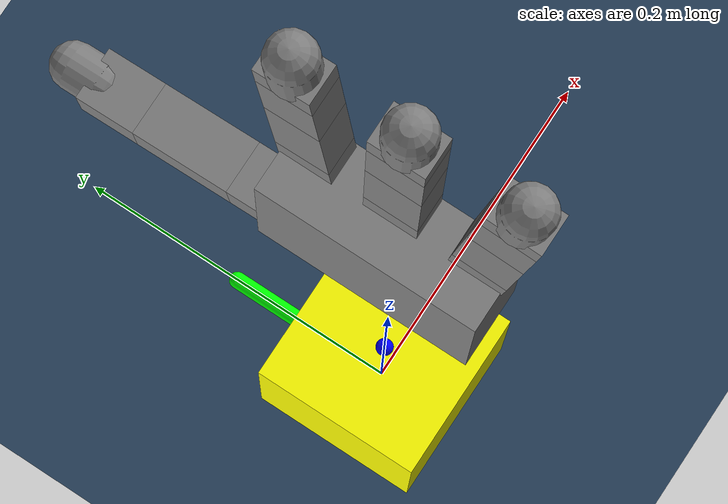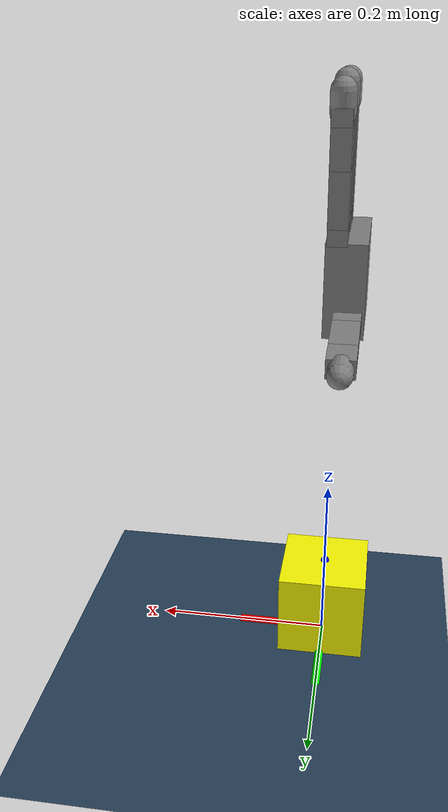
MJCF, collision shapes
<mujoco model="allegro_right_teleop">
  <compiler angle="radian" meshdir="assets" autolimits="true"/>

  <option solver="Newton" density="1.2" viscosity="0.1" />

  <!-- Defaults from right_hand.xml -->
  <default>
    <default class="allegro_right">
      <joint axis="0 1 0" damping=".1"/>
      <position kp="1"/>
      <geom density="800"/>

      <default class="visual">
        <geom type="mesh" contype="0" conaffinity="0" group="2" material="black"/>
        <default class="palm_visual">
          <geom mesh="base_link"/>
        </default>
        <default class="base_visual">
          <geom mesh="link_0.0"/>
        </default>
        <default class="proximal_visual">
          <geom mesh="link_1.0"/>
        </default>
        <default class="medial_visual">
          <geom mesh="link_2.0"/>
        </default>
        <default class="distal_visual">
          <geom mesh="link_3.0"/>
        </default>
        <default class="fingertip_visual">
          <geom pos="0 0 0.0267" material="white" mesh="link_3.0_tip"/>
        </default>
        <default class="thumbtip_visual">
          <geom pos="0 0 0.0423" material="white" mesh="link_15.0_tip"/>
        </default>
      </default>

      <default class="collision">
        <geom group="3" type="box" mass="0"/>
        <default class="palm_collision">
          <geom size="0.0204 0.0565 0.0475" pos="-0.0093 0 -0.0475"/>
        </default>
        <default class="base_collision">
          <geom size="0.0098 0.01375 0.0082" pos="0 0 0.0082"/>
          <default class="thumb_base_collision">
            <geom size="0.0179 0.017 0.02275" pos="-0.0179 0.009 0.0145"/>
          </default>
        </default>
        <default class="proximal_collision">
          <geom size="0.0098 0.01375 0.027" pos="0 0 0.027"/>
          <default class="thumb_proximal_collision">
            <geom size="0.0098 0.01375 0.00885" pos="0 0 0.00885"/>
          </default>
        </default>
        <default class="medial_collision">
          <geom size="0.0098 0.01375 0.0192" pos="0 0 0.0192"/>
          <default class="thumb_medial_collision">
            <geom size="0.0098 0.01375 0.0257" pos="0 0 0.0257"/>
          </default>
        </default>
        <default class="distal_collision">
          <geom size="0.0098 0.01375 0.008" pos="0 0 0.008"/>
          <default class="thumb_distal_collision">
            <geom size="0.0098 0.01375 0.0157" pos="0 0 0.0157"/>
          </default>
        </default>
        <default class="fingertip_collision">
          <geom type="capsule" size="0.012 0.01" pos="0 0 0.019"/>
          <default class="thumbtip_collision">
            <geom type="capsule" size="0.012 0.008" pos="0 0 0.035"/>
          </default>
        </default>
      </default>

      <default class="base">
        <joint axis="0 0 1" range="-0.47 0.47"/>
        <position ctrlrange="-0.47 0.47"/>
      </default>
      <default class="proximal">
        <joint range="-0.196 1.61"/>
        <position ctrlrange="-0.196 1.61"/>
      </default>
      <default class="medial">
        <joint range="-0.174 1.709"/>
        <position ctrlrange="-0.174 1.709"/>
      </default>
      <default class="distal">
        <joint range="-0.227 1.618"/>
        <position ctrlrange="-0.227 1.618"/>
      </default>
      <default class="thumb_base">
        <joint axis="-1 0 0" range="0.263 1.396"/>
        <position ctrlrange="0.263 1.396"/>
      </default>
      <default class="thumb_proximal">
        <joint axis="0 0 1" range="-0.105 1.163"/>
        <position ctrlrange="-0.105 1.163"/>
      </default>
      <default class="thumb_medial">
        <joint range="-0.189 1.644"/>
        <position ctrlrange="-0.189 1.644"/>
      </default>
      <default class="thumb_distal">
        <joint range="-0.162 1.719"/>
        <position ctrlrange="-0.162 1.719"/>
      </default>
    </default>
  </default>

  <!-- Assets: environment (from test.xml) + allegro meshes -->
  <asset>
    <!-- environment textures/materials -->
    <texture type="skybox" builtin="gradient" rgb1="0.3 0.5 0.7" rgb2="0 0 0" width="512" height="3072"/>
    <texture type="2d" name="groundplane" builtin="checker" mark="edge" rgb1="0.2 0.3 0.4" rgb2="0.1 0.2 0.3"
      markrgb="0.8 0.8 0.8" width="300" height="300"/>
    <material name="groundplane" texture="groundplane" texuniform="true" texrepeat="5 5" reflectance="0.2"/>

    <!-- textured cubes -->
    <texture name="cube_surface" file="textures/openai_block.png" gridsize="3 4" gridlayout=".U..LFRB.D.."/>
    <material name="obj_material" texture="cube_surface" specular="5" shininess=".0"/>

    <!-- allegro_right materials and meshes -->
    <material name="black" rgba="0.2 0.2 0.2 1"/>
    <material name="white" rgba="0.9 0.9 0.9 1"/>

    <mesh file="base_link.stl"/>
    <mesh file="link_0.0.stl"/>
    <mesh file="link_1.0.stl"/>
    <mesh file="link_2.0.stl"/>
    <mesh file="link_3.0.stl"/>
    <mesh file="link_3.0_tip.stl"/>
    <mesh file="link_12.0_right.stl"/>
    <mesh file="link_13.0.stl"/>
    <mesh file="link_14.0.stl"/>
    <mesh file="link_15.0.stl"/>
    <mesh file="link_15.0_tip.stl"/>
  </asset>

  <worldbody>
    <!-- lights & floor from test.xml -->
    <light pos="0.3 0 1.5" dir="0 0 -1" directional="true"/>
    <geom name="floor" pos="0 0 0" size="0 0 0.05" type="plane" material="groundplane"/>

    <!-- coordinate axes -->
    <body name="coordinate_axes/" pos="0 0 0">
        <geom name="coordinate_axes/x" type="capsule" contype="0" conaffinity="0" size="0.005" rgba="1 0 0 1" fromto="0 0 0 0.1 0 0"/>
        <geom name="coordinate_axes/y" type="capsule" contype="0" conaffinity="0" size="0.005" rgba="0 1 0 1" fromto="0 0 0 0 0.1 0"/>
        <geom name="coordinate_axes/z" type="capsule" contype="0" conaffinity="0" size="0.005" rgba="0 0 1 1" fromto="0 0 0 0 0 0.1"/>
    </body>

    <!-- textured cubes on the table -->
    <body name="cube" pos="0.0 0 0.05">
      <freejoint name="cube_free"/>
      <geom name="cube_geom" type="box" mass="0.1" material="obj_material" size="0.05 0.05 0.05"
            quat="1 0 0 0" friction="0.5" rgba="1.0 1.0 0 0.99"/>
    </body>

    <!-- teleop root body: 3 translations + 3 rotations controlling the whole hand -->
    <body name="hand_root" pos="0 0 0.5">
      <joint name="tx" type="slide" axis="1 0 0" damping="10.0"/>
      <joint name="ty" type="slide" axis="0 1 0" damping="10.0"/>
      <joint name="tz" type="slide" axis="0 0 1" damping="10.0"/>

      <joint name="rx" type="hinge" axis="1 0 0" damping="10.0" range="-6.28318 6.28318"/>
      <joint name="ry" type="hinge" axis="0 1 0" damping="10.0" range="-6.28318 6.28318"/>
      <joint name="rz" type="hinge" axis="0 0 1" damping="10.0" range="-6.28318 6.28318"/>

      <!-- palm and fingers from right_hand.xml, now under hand_root so they move with tx/ty/tz/rx/ry/rz -->
      <body name="palm" childclass="allegro_right">
        <geom class="palm_visual" mesh="base_link"/>
        <geom class="palm_collision"/>
        <!-- First finger -->
        <body name="ff_base" pos="0 0.0435 -0.001542" quat="0.999048 -0.0436194 0 0">
          <joint name="ffj0" class="base"/>
          <geom class="base_visual"/>
          <geom class="base_collision"/>
          <body name="ff_proximal" pos="0 0 0.0164">
            <joint name="ffj1" class="proximal"/>
            <geom class="proximal_visual"/>
            <geom class="proximal_collision"/>
            <body name="ff_medial" pos="0 0 0.054">
              <joint name="ffj2" class="medial"/>
              <geom class="medial_visual"/>
              <geom class="medial_collision"/>
              <body name="ff_distal" pos="0 0 0.0384">
                <joint name="ffj3" class="distal"/>
                <geom class="distal_visual"/>
                <geom class="distal_collision"/>
                <body name="ff_tip">
                  <geom class="fingertip_visual"/>
                  <geom class="fingertip_collision"/>
                </body>
              </body>
            </body>
          </body>
        </body>
        <!-- Middle finger -->
        <body name="mf_base" pos="0 0 0.0007">
          <joint name="mfj0" class="base"/>
          <geom class="base_visual"/>
          <geom class="base_collision"/>
          <body name="mf_proximal" pos="0 0 0.0164">
            <joint name="mfj1" class="proximal"/>
            <geom class="proximal_visual"/>
            <geom class="proximal_collision"/>
            <body name="mf_medial" pos="0 0 0.054">
              <joint name="mfj2" class="medial"/>
              <geom class="medial_visual"/>
              <geom class="medial_collision"/>
              <body name="mf_distal" pos="0 0 0.0384">
                <joint name="mfj3" class="distal"/>
                <geom class="distal_visual"/>
                <geom class="distal_collision"/>
                <body name="mf_tip">
                  <geom class="fingertip_visual"/>
                  <geom class="fingertip_collision"/>
                </body>
              </body>
            </body>
          </body>
        </body>
        <!-- Ring finger -->
        <body name="rf_base" pos="0 -0.0435 -0.001542" quat="0.999048 0.0436194 0 0">
          <joint name="rfj0" class="base"/>
          <geom class="base_visual"/>
          <geom class="base_collision"/>
          <body name="rf_proximal" pos="0 0 0.0164">
            <joint name="rfj1" class="proximal"/>
            <geom class="proximal_visual"/>
            <geom class="proximal_collision"/>
            <body name="rf_medial" pos="0 0 0.054">
              <joint name="rfj2" class="medial"/>
              <geom class="medial_visual"/>
              <geom class="medial_collision"/>
              <body name="rf_distal" pos="0 0 0.0384">
                <joint name="rfj3" class="distal"/>
                <geom class="distal_visual"/>
                <geom class="distal_collision"/>
                <body name="rf_tip">
                  <geom class="fingertip_visual"/>
                  <geom class="fingertip_collision"/>
                </body>
              </body>
            </body>
          </body>
        </body>
        <!-- Thumb -->
        <body name="th_base" pos="-0.0182 0.019333 -0.045987" quat="0.477714 -0.521334 -0.521334 -0.477714">
          <joint name="thj0" class="thumb_base"/>
          <geom class="visual" mesh="link_12.0_right"/>
          <geom class="thumb_base_collision"/>
          <body name="th_proximal" pos="-0.027 0.005 0.0399">
            <joint name="thj1" class="thumb_proximal"/>
            <geom class="visual" mesh="link_13.0"/>
            <geom class="thumb_proximal_collision"/>
            <body name="th_medial" pos="0 0 0.0177">
              <joint name="thj2" class="thumb_medial"/>
              <geom class="visual" mesh="link_14.0"/>
              <geom class="thumb_medial_collision"/>
              <body name="th_distal" pos="0 0 0.0514">
                <joint name="thj3" class="thumb_distal"/>
                <geom class="visual" mesh="link_15.0"/>
                <geom class="thumb_distal_collision"/>
                <body name="th_tip">
                  <geom class="thumbtip_visual"/>
                  <geom class="thumbtip_collision"/>
                </body>
              </body>
            </body>
          </body>
        </body>
      </body>
    </body>
  </worldbody>

  <!-- contact exclusions from right_hand.xml -->
  <contact>
    <exclude body1="palm" body2="ff_base"/>
    <exclude body1="palm" body2="mf_base"/>
    <exclude body1="palm" body2="rf_base"/>
    <exclude body1="palm" body2="th_base"/>
    <exclude body1="palm" body2="th_proximal"/>
  </contact>

  <actuator>
    <!-- teleop root 6-DoF position actuators (xyz + rotations) -->
    <position name="act_tx" joint="tx" kp="1000"/>
    <position name="act_ty" joint="ty" kp="1000"/>
    <position name="act_tz" joint="tz" kp="1000"/>

    <position name="act_rx" joint="rx" kp="1000" ctrlrange="-6.28318 6.28318"/>
    <position name="act_ry" joint="ry" kp="1000" ctrlrange="-6.28318 6.28318"/>
    <position name="act_rz" joint="rz" kp="1000" ctrlrange="-6.28318 6.28318"/>

    <!-- finger joint actuators from right_hand.xml -->
    <position name="ffa0" joint="ffj0" kp="1" class="base"/>
    <position name="ffa1" joint="ffj1" kp="1" class="proximal"/>
    <position name="ffa2" joint="ffj2" kp="1" class="medial"/>
    <position name="ffa3" joint="ffj3" kp="1" class="distal"/>
    <position name="mfa0" joint="mfj0" kp="1" class="base"/>
    <position name="mfa1" joint="mfj1" kp="1" class="proximal"/>
    <position name="mfa2" joint="mfj2" kp="1" class="medial"/>
    <position name="mfa3" joint="mfj3" kp="1" class="distal"/>
    <position name="rfa0" joint="rfj0" kp="1" class="base"/>
    <position name="rfa1" joint="rfj1" kp="1" class="proximal"/>
    <position name="rfa2" joint="rfj2" kp="1" class="medial"/>
    <position name="rfa3" joint="rfj3" kp="1" class="distal"/>
    <position name="tha0" joint="thj0" kp="1" class="thumb_base"/>
    <position name="tha1" joint="thj1" kp="1" class="thumb_proximal"/>
    <position name="tha2" joint="thj2" kp="1" class="thumb_medial"/>
    <position name="tha3" joint="thj3" kp="1" class="thumb_distal"/>
  </actuator>
</mujoco>
